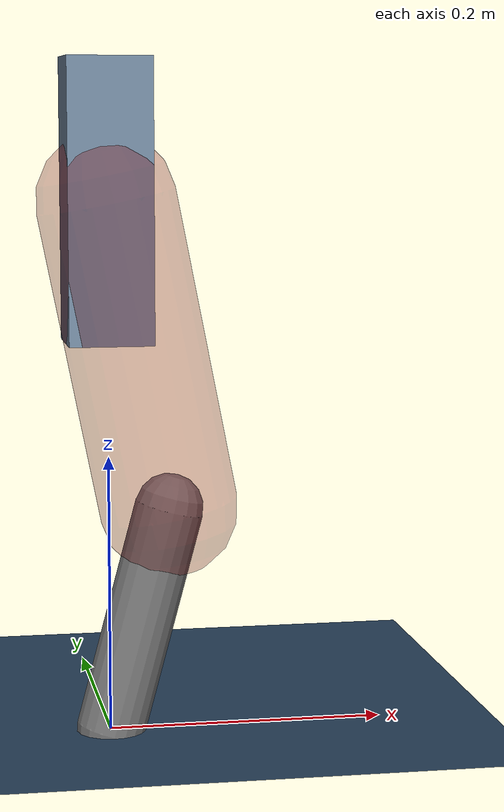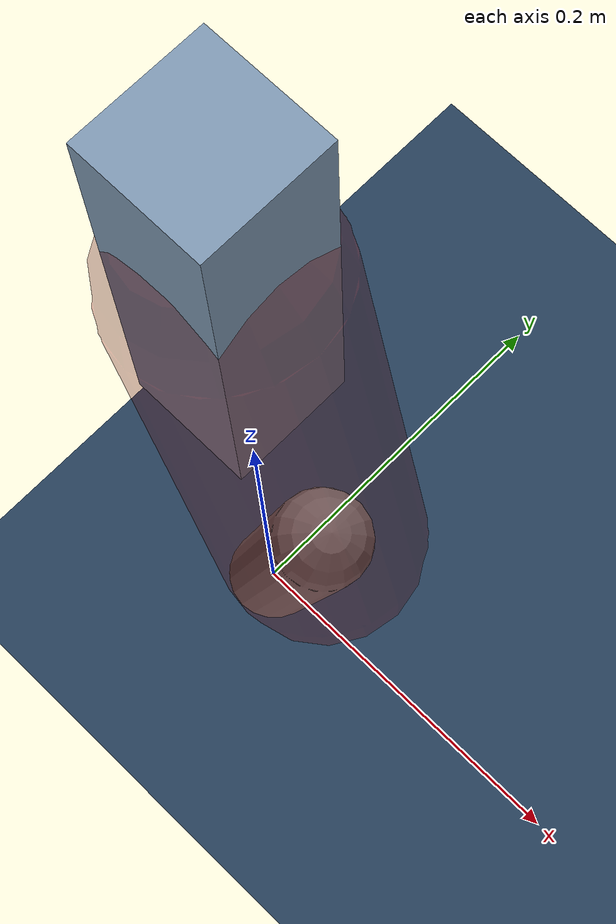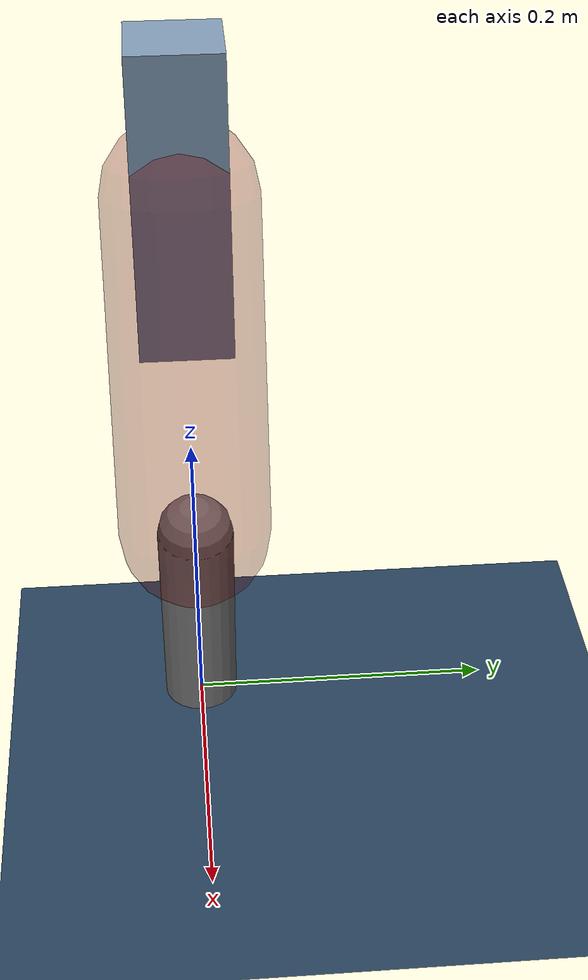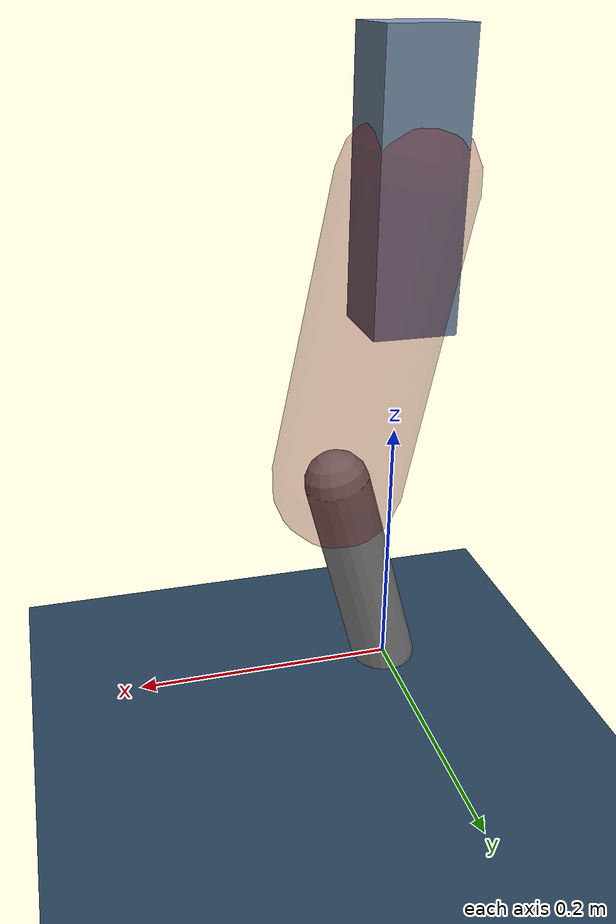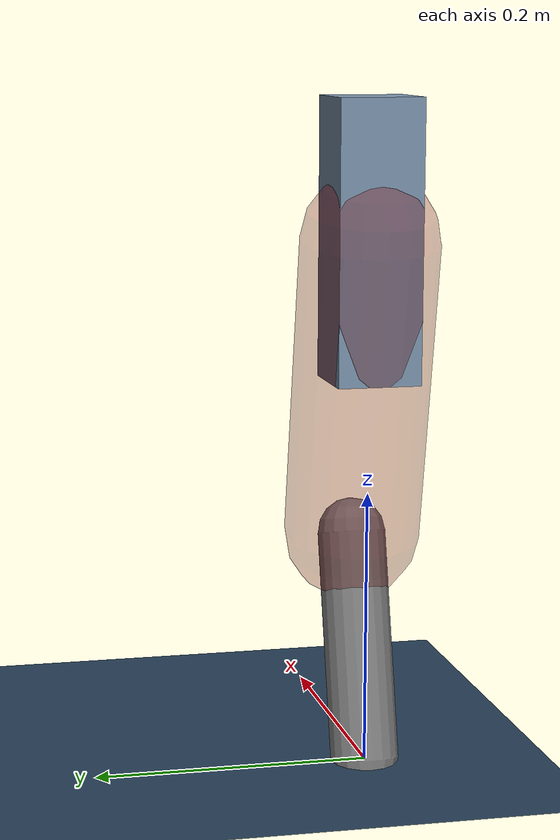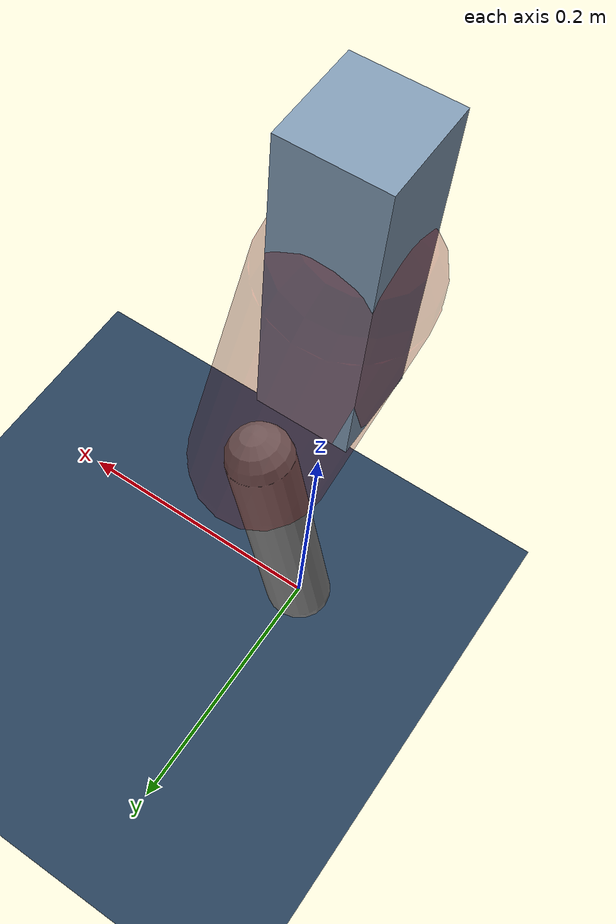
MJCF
<mujoco model="Hopper2D">
	<compiler inertiafromgeom="true" angle="radian" />
	<option timestep="0.001" integrator="implicit" cone="elliptic" solver="Newton" tolerance="1e-10" />

	<default>
		<geom contype="1" conaffinity="1" condim="3" friction="2 0.005 0.0001" solref="0.005 1" />
		<joint limited="true" damping="0.1" />
	</default>

	<asset>
		<texture name="skybox" type="skybox" builtin="gradient" rgb1=".4 .6 .8" rgb2="0 0 0" width="800" height="800" />
		<texture name="grid" type="2d" builtin="checker" rgb1=".1 .2 .3" rgb2=".2 .3 .4" width="300" height="300" mark="edge" markrgb=".2 .3 .4" />
		<material name="ground" texture="grid" texrepeat="1 1" texuniform="true" reflectance="0.1" />
		<material name="leg" rgba="0.5 0.6 0.7 1" />
	</asset>

	<worldbody>

		<geom name="floor" type="plane" size="5 5 0.25" material="ground" />

		<light directional="false" diffuse="0.8 0.8 0.8" specular="0.3 0.3 0.3" pos="0 0 2" dir="0 0 -1" />
		<light mode="targetbodycom" target="base" directional="false" diffuse="0.8 0.8 0.8" specular="0.3 0.3 0.3" pos="0 0 2" dir="0 0 -1" />

		<camera name="fixed" pos="0 -2 1" xyaxes="1 0 0 0 0 1" />
		<camera name="tracking" mode="trackcom" pos="0 -3 1" />

		<body name="root" pos="0 0 0.3826541987699481">
			<joint name="slide_x" type="slide" axis="1 0 0" range="-100 100" />
			<joint name="slide_z" type="slide" axis="0 0 1" range="0 10" />

			<body name="base" pos="0 0 0">
				<geom name="torso" type="box" size="0.03 0.03 0.1" mass="1.992" material="leg" />

				<body name="link1" pos="0 0 0" euler="0 1.3758053041818168 0">
					<joint type="hinge" axis="0 -1 0" pos="0 0 0" name="hinge1" limited="true" range="-3.14 3.14" stiffness="0" damping="0.1" />
					<geom name="thigh" type="capsule" fromto="0 0 0 0.2247072297126421 0 0" size="0.05" rgba="0.5 0 0 0.3" mass="0.7915680742816052" />

					<body name="link2" pos="0.2247072297126421 0 0" euler="0 0.45722741162704034 0">
						<joint type="hinge" axis="0 -1 0" pos="0 0 0" name="hinge2" limited="true" range="-3.14 3.14" stiffness="0" damping="0.1" />
						<geom name="shank" type="capsule" fromto="0 0 0 0.167946969057306 0 0" size="0.025" mass="0.3734575752458448" />

					</body>
				</body>
			</body>
		</body>
	</worldbody>

	<actuator>
		<motor name="torque1" joint="hinge1" ctrlrange="-101.97368409106814 101.97368409106814" ctrllimited="true" gear="1" />
		<motor name="torque2" joint="hinge2" ctrlrange="-14.303049050970573 14.303049050970573" ctrllimited="true" gear="1" />
	</actuator>
</mujoco>
